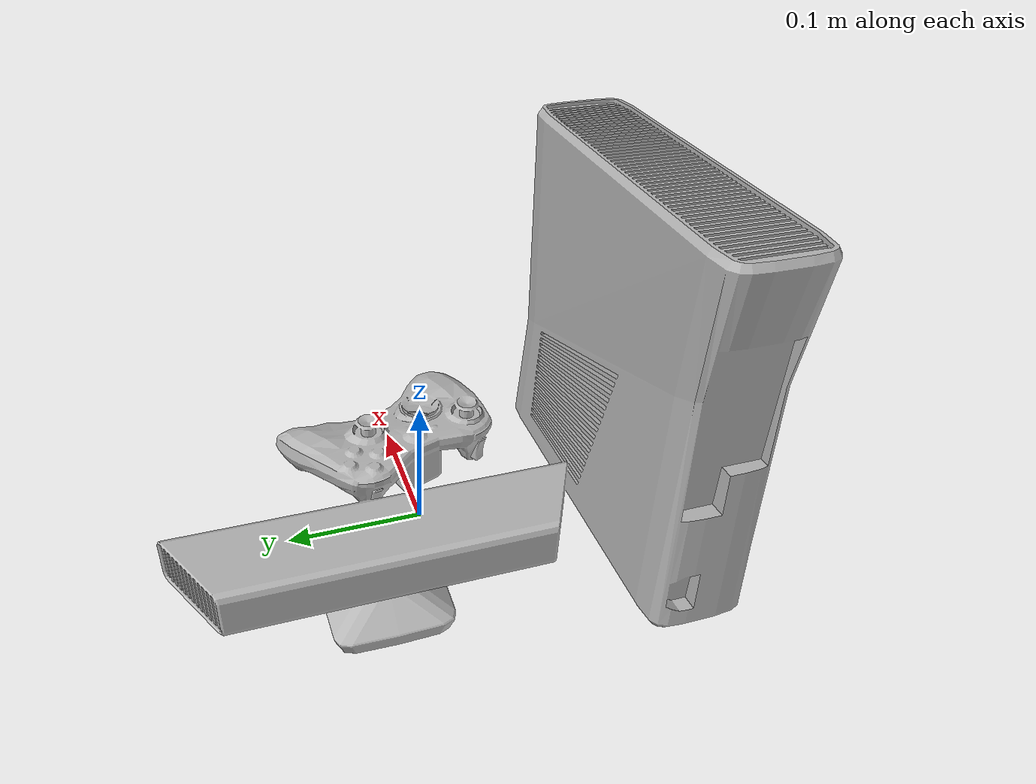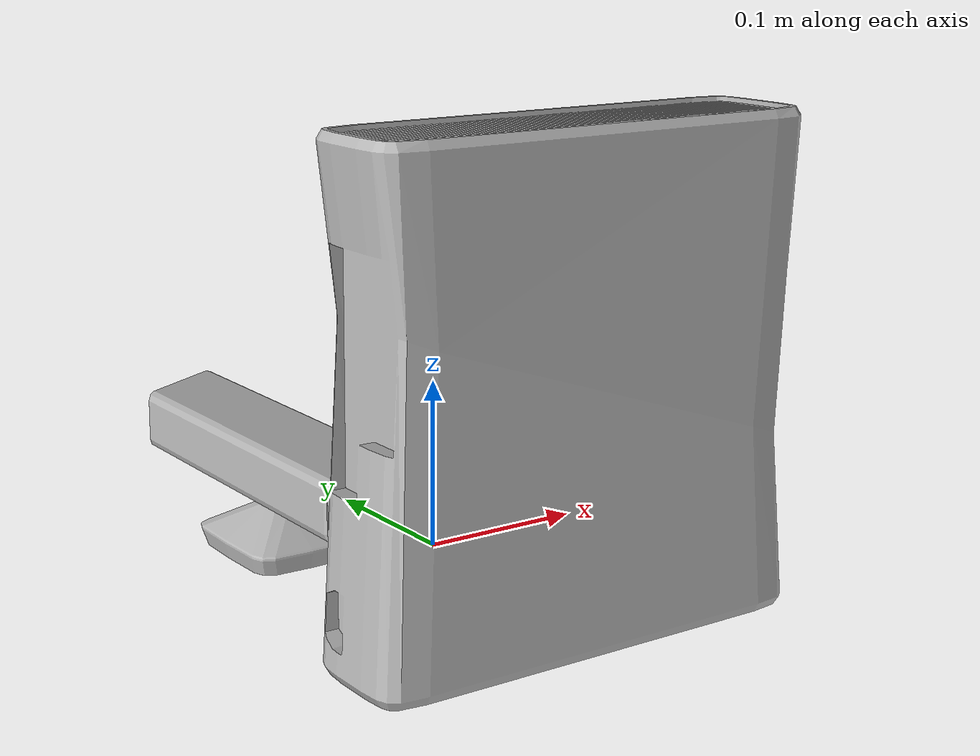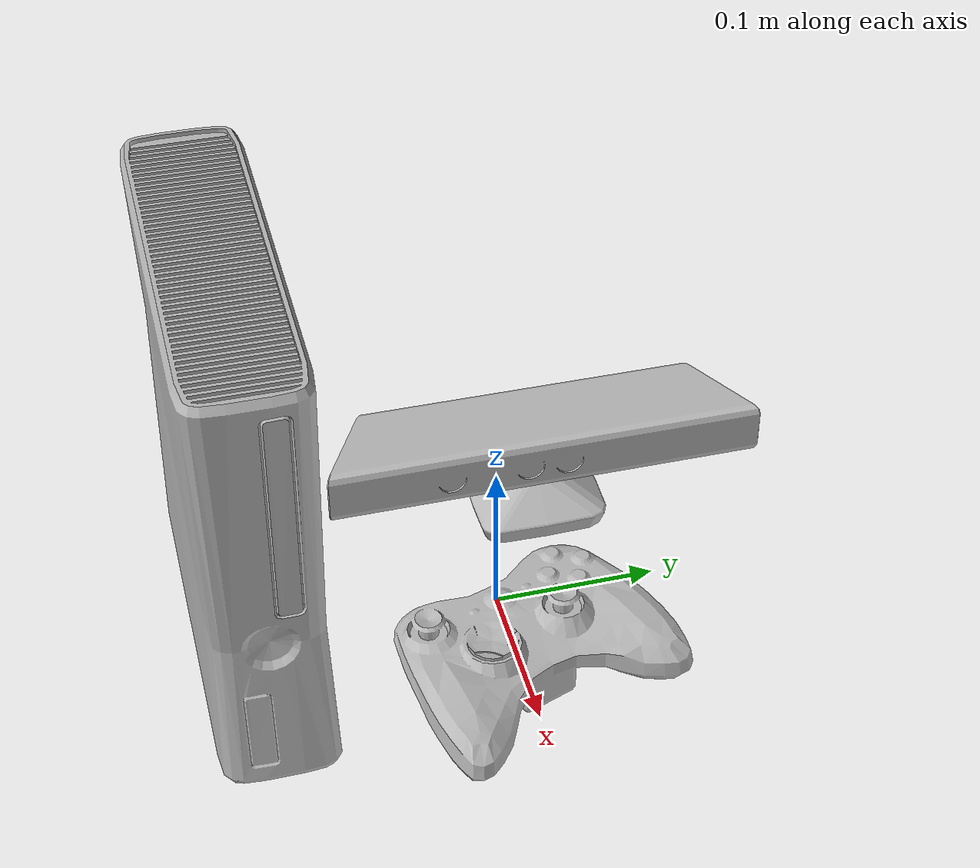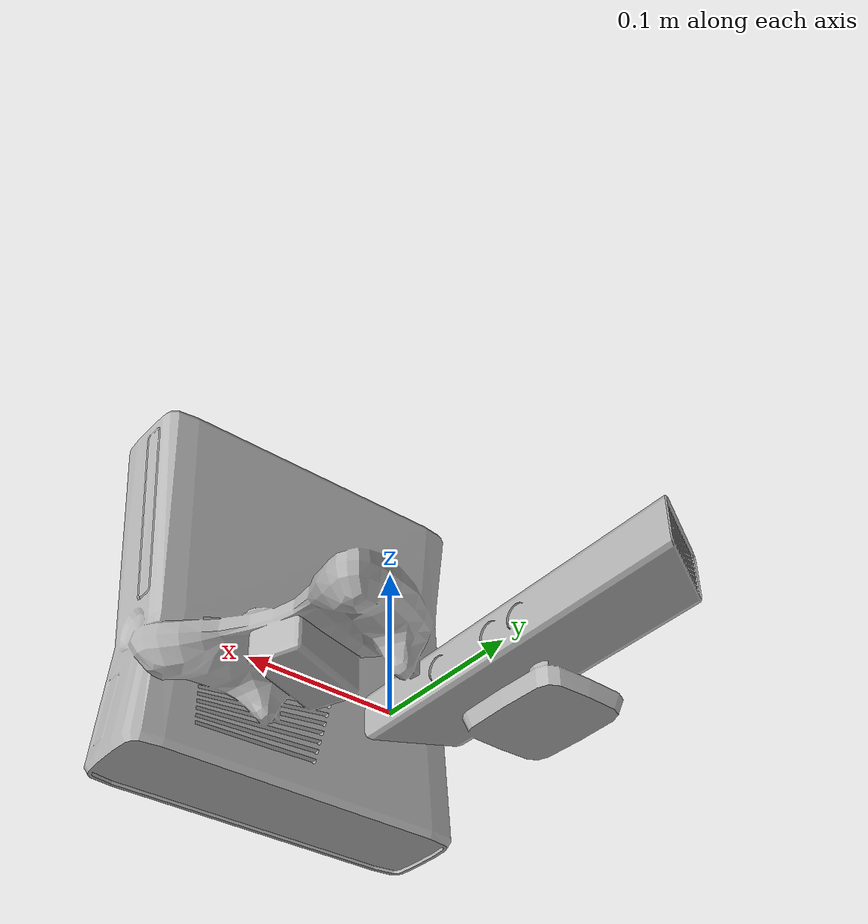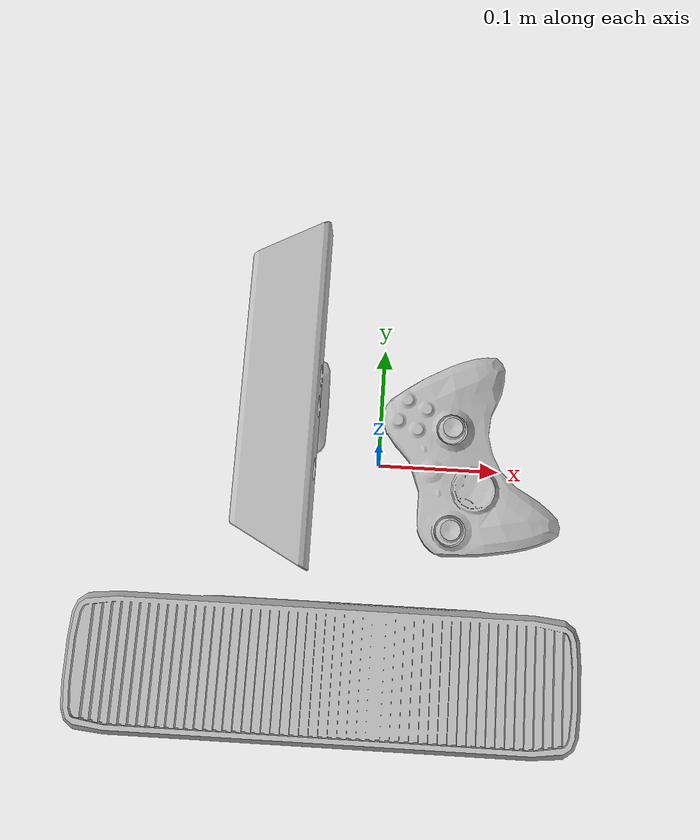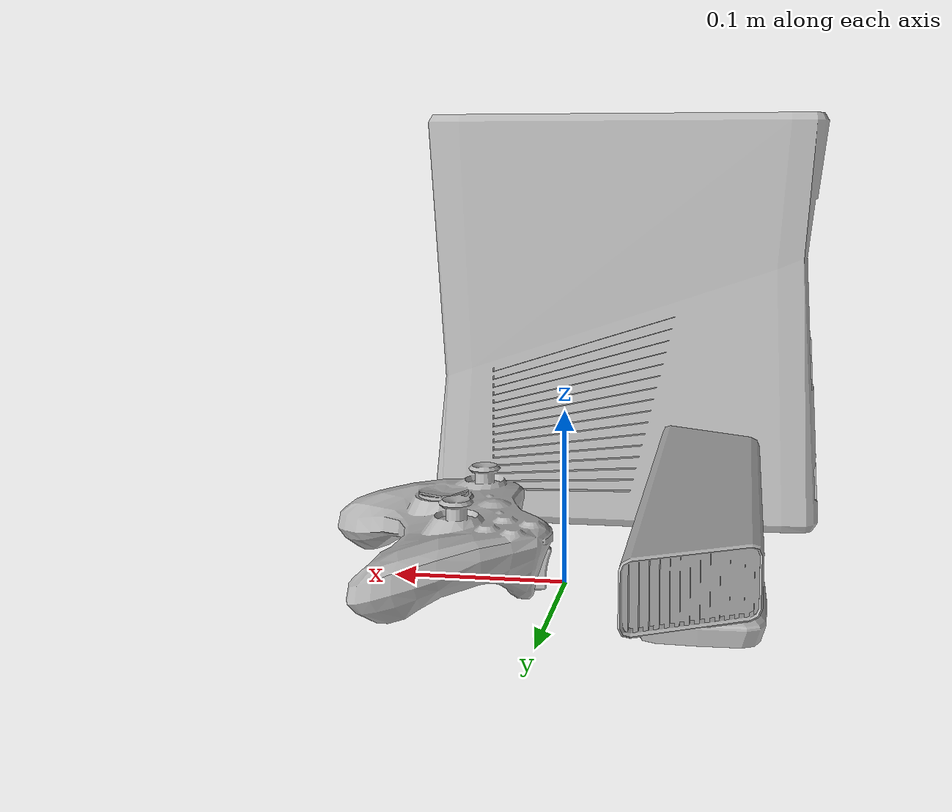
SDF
<?xml version='1.0'?>
<sdf version='1.4'>
  <model name='651'>
    <pose>0 0 0 0 0 0</pose>
    <static>true</static>
    <link name='link'>
      <collision name='collision'>
        <pose>0 0 0 0 0 0</pose>
        <geometry>
          <box>
            <size>0.300008 0.370002 2</size>
          </box>
        </geometry>
      </collision>
      <visual name='visual'>
        <pose>0 0 0 0 0 0</pose>
        <geometry>
          <mesh><uri>model://651/651.dae</uri></mesh>
        </geometry>
      </visual>
    </link>
  </model>
</sdf>
